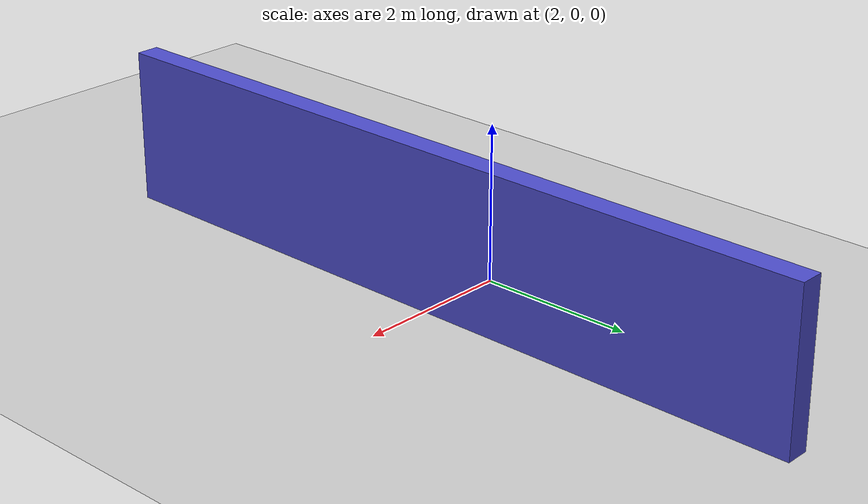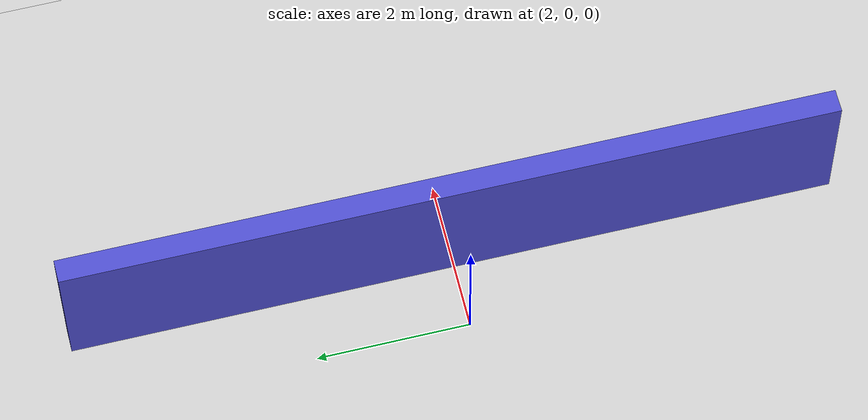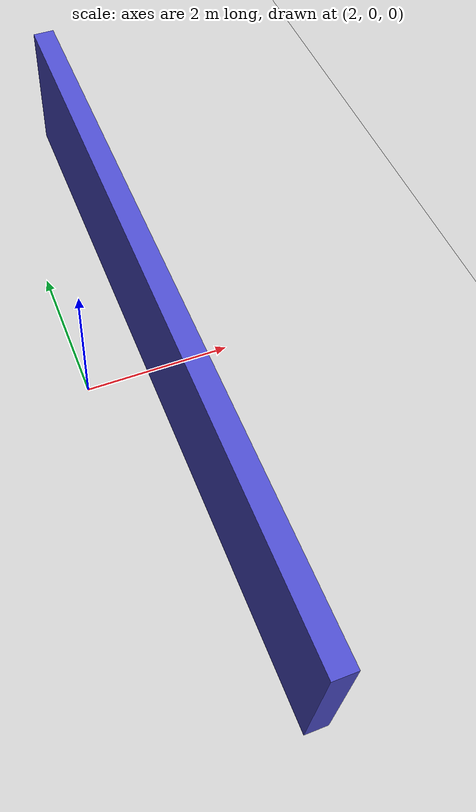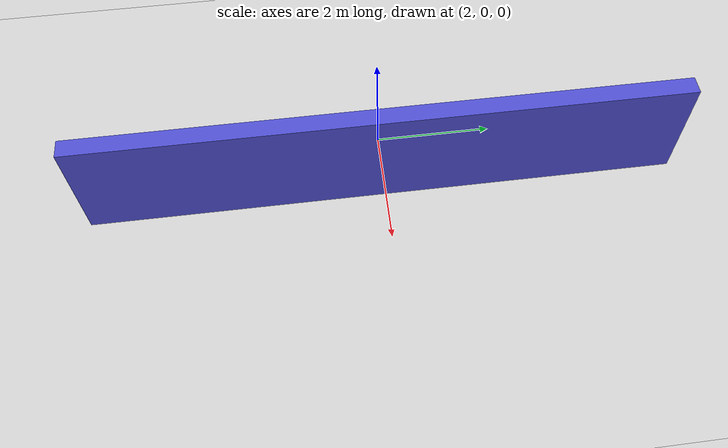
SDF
<?xml version="1.0" ?>
<sdf version="1.9">
  <world name='robotnik_simple'>
    <physics type='ode'>
      <max_step_size>0.001</max_step_size>
      <real_time_factor>1.0</real_time_factor>
      <real_time_update_rate>1000</real_time_update_rate>
      <ode>
        <solver>
          <type>world</type>
          <iters>150</iters>
          <sor>1.0</sor>
          <use_dynamic_moi_rescaling>false</use_dynamic_moi_rescaling>
        </solver>
        <constraints>
          <cfm>1e-5</cfm>
          <erp>0.2</erp>
          <contact_max_correcting_vel>0.1</contact_max_correcting_vel>
          <contact_surface_layer>0.001</contact_surface_layer>
        </constraints>
      </ode>
    </physics>

    <plugin name='gz::sim::systems::Physics' filename='libgz-sim-physics-system.so'/>
    <plugin name='gz::sim::systems::UserCommands' filename='libgz-sim-user-commands-system.so'/>
    <plugin name='gz::sim::systems::SceneBroadcaster' filename='libgz-sim-scene-broadcaster-system.so'/>
    <plugin name="gz::sim::systems::Imu" filename="libgz-sim-imu-system.so"/>
    <plugin name="gz::sim::systems::NavSat" filename="libgz-sim-navsat-system.so"/>
    <plugin name="gz::sim::systems::Contact" filename="libgz-sim-contact-system.so"/>
    <plugin name="gz::sim::systems::ForceTorque" filename="libgz-sim-forcetorque-system.so"/>

    <scene>
      <ambient>1 1 1</ambient>
      <grid>false</grid>
      <sky></sky>
    </scene>

    <light type="directional" name="sun">
      <cast_shadows>false</cast_shadows>
      <pose>0 0 20 -1.3 0 0.5</pose>
      <diffuse>0.8 0.8 0.8 1</diffuse>
      <specular>0.01 0.01 0.01 1</specular>
      <intensity>2</intensity>
      <visualize>false</visualize>
    </light>

    <model name="ground_plane">
      <static>true</static>
      <link name="link">
        <collision name="collision">
          <geometry>
            <plane>
              <normal>0 0 1</normal>
            </plane>
          </geometry>
        </collision>
        <visual name="visual">
          <geometry>
            <plane>
              <normal>0 0 1</normal>
              <size>100 100</size>
            </plane>
          </geometry>
          <material>
            <ambient>0.8 0.8 0.8 1</ambient>
            <diffuse>0.8 0.8 0.8 1</diffuse>
            <specular>0.8 0.8 0.8 1</specular>
          </material>
        </visual>
      </link>
    </model>

    <model name="wall">
      <static>true</static>
      <pose>3 0 1.0 0 0 1.57</pose>
      <link name="link">
        <collision name="collision">
          <geometry>
            <box>
              <size>10 0.3 2.0</size>
            </box>
          </geometry>
          <surface>
            <contact>
              <ode>
                <kp>1e6</kp>
                <kd>100</kd>
                <min_depth>0.0001</min_depth>
                <max_vel>0.01</max_vel>
              </ode>
            </contact>
            <friction>
              <ode>
                <mu>0.8</mu>
                <mu2>0.8</mu2>
              </ode>
            </friction>
          </surface>
        </collision>
        <visual name="visual">
          <geometry>
            <box>
              <size>10 0.3 2.0</size>
            </box>
          </geometry>
          <material>
            <ambient>0.3 0.3 0.8 1</ambient>
            <diffuse>0.3 0.3 0.8 1</diffuse>
          </material>
        </visual>
      </link>
    </model>
  </world>
</sdf>
